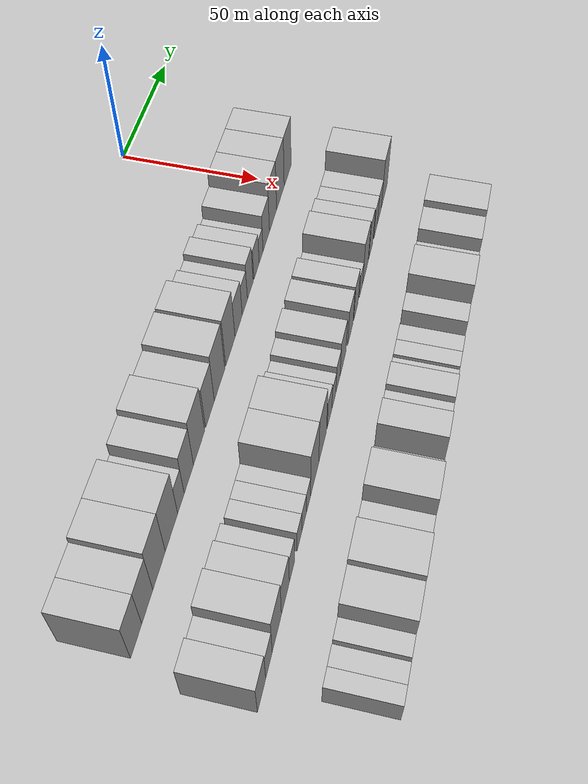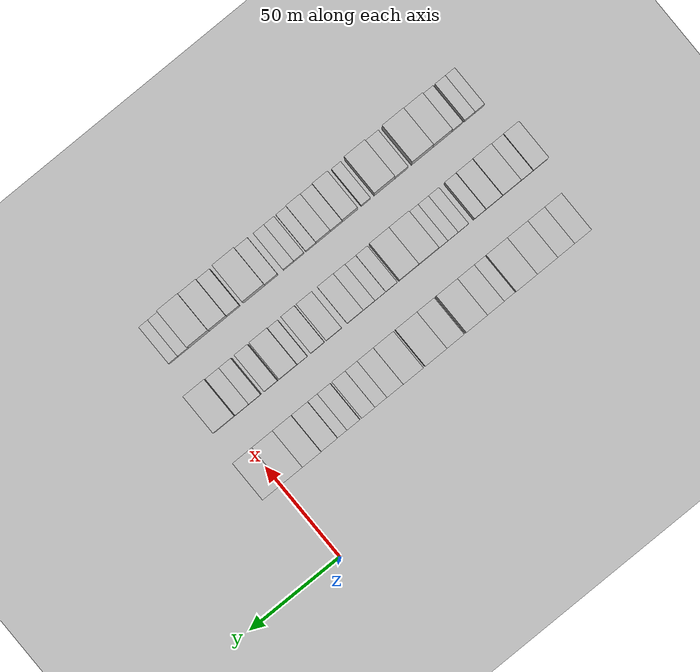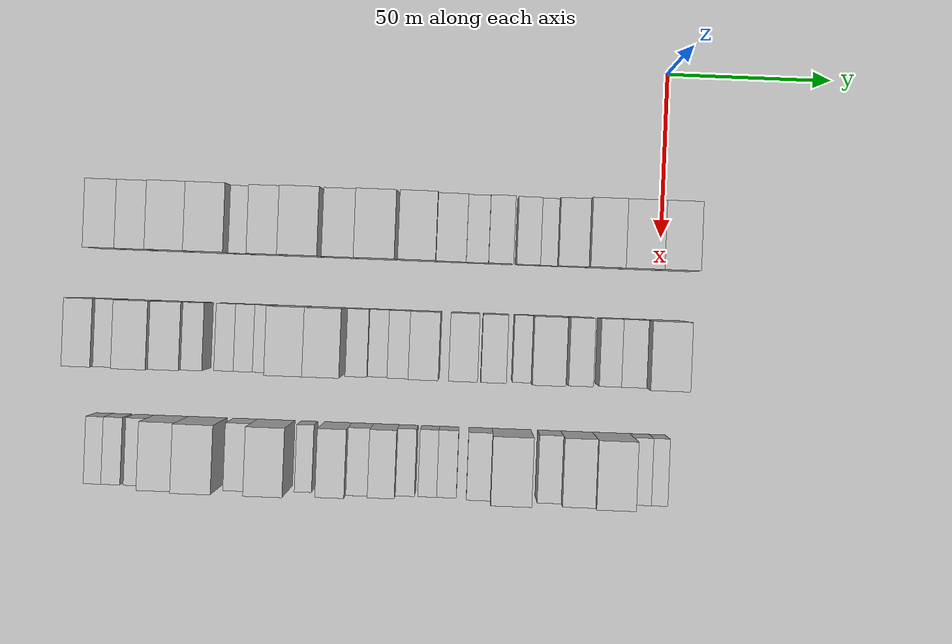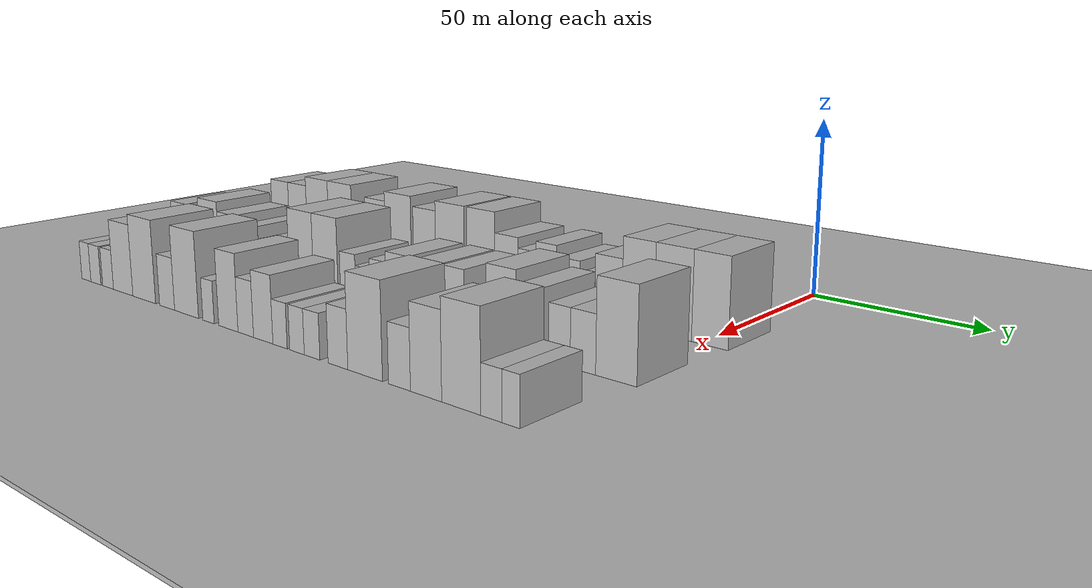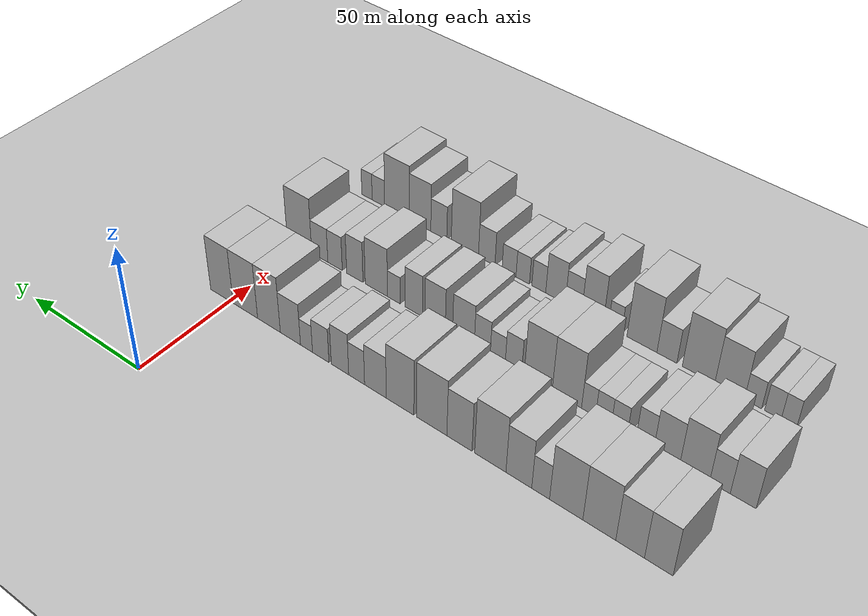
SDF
<sdf version="1.6">
 <world name="default">
  <include><name>ground_plane_1</name><uri>model://HANNAS_ground_plane</uri></include>
  <include>
   <name>ground_plane_2</name>
   <uri>model://HANNAS_ground_plane</uri>
   <pose>100 0 0  0 0 0</pose>
  </include>
  <model name="building_19">
   <static>1</static>
   <pose>50.0000 -166.1909 0 0.000000 0.000000 0.000000</pose>
   <link name="link">
    <pose>0 0 10.50 0 0 0</pose>
    <collision name="collision"><geometry><box><size>20.0000 9.2155 21.0000</size></box></geometry></collision>
    <visual name="visual">
     <cast_shadows>0</cast_shadows>
     <geometry><box><size>20.0000 9.2155 21.0000</size></box></geometry>
     <material>
      <script>
       <uri>model://HANNAS_wall/materials/scripts</uri>
       <uri>model://HANNAS_wall/materials/textures</uri>
       <name>vrc/HANNAS_wall</name>
      </script>
     </material>
    </visual>
   </link>
  </model>
  <model name="building_20">
   <static>1</static>
   <pose>50.0000 -156.8598 0 0.000000 0.000000 0.000000</pose>
   <link name="link">
    <pose>0 0 10.50 0 0 0</pose>
    <collision name="collision"><geometry><box><size>20.0000 9.4467 21.0000</size></box></geometry></collision>
    <visual name="visual">
     <cast_shadows>0</cast_shadows>
     <geometry><box><size>20.0000 9.4467 21.0000</size></box></geometry>
     <material>
      <script>
       <uri>model://HANNAS_wall/materials/scripts</uri>
       <uri>model://HANNAS_wall/materials/textures</uri>
       <name>vrc/HANNAS_wall</name>
      </script>
     </material>
    </visual>
   </link>
  </model>
  <model name="building_21">
   <static>1</static>
   <pose>50.0000 -146.5706 0 0.000000 0.000000 0.000000</pose>
   <link name="link">
    <pose>0 0 12.00 0 0 0</pose>
    <collision name="collision"><geometry><box><size>20.0000 11.1319 24.0000</size></box></geometry></collision>
    <visual name="visual">
     <cast_shadows>0</cast_shadows>
     <geometry><box><size>20.0000 11.1319 24.0000</size></box></geometry>
     <material>
      <script>
       <uri>model://HANNAS_wall/materials/scripts</uri>
       <uri>model://HANNAS_wall/materials/textures</uri>
       <name>vrc/HANNAS_wall</name>
      </script>
     </material>
    </visual>
   </link>
  </model>
  <model name="building_22">
   <static>1</static>
   <pose>50.0000 -135.2333 0 0.000000 0.000000 0.000000</pose>
   <link name="link">
    <pose>0 0 12.00 0 0 0</pose>
    <collision name="collision"><geometry><box><size>20.0000 11.5426 24.0000</size></box></geometry></collision>
    <visual name="visual">
     <cast_shadows>0</cast_shadows>
     <geometry><box><size>20.0000 11.5426 24.0000</size></box></geometry>
     <material>
      <script>
       <uri>model://HANNAS_wall/materials/scripts</uri>
       <uri>model://HANNAS_wall/materials/textures</uri>
       <name>vrc/HANNAS_wall</name>
      </script>
     </material>
    </visual>
   </link>
  </model>
  <model name="building_23">
   <static>1</static>
   <pose>50.0000 -126.3119 0 0.000000 0.000000 0.000000</pose>
   <link name="link">
    <pose>0 0 7.50 0 0 0</pose>
    <collision name="collision"><geometry><box><size>20.0000 6.3001 15.0000</size></box></geometry></collision>
    <visual name="visual">
     <cast_shadows>0</cast_shadows>
     <geometry><box><size>20.0000 6.3001 15.0000</size></box></geometry>
     <material>
      <script>
       <uri>model://HANNAS_wall/materials/scripts</uri>
       <uri>model://HANNAS_wall/materials/textures</uri>
       <name>vrc/HANNAS_wall</name>
      </script>
     </material>
    </visual>
   </link>
  </model>
  <model name="building_24">
   <static>1</static>
   <pose>50.0000 -118.5132 0 0.000000 0.000000 0.000000</pose>
   <link name="link">
    <pose>0 0 10.50 0 0 0</pose>
    <collision name="collision"><geometry><box><size>20.0000 9.2973 21.0000</size></box></geometry></collision>
    <visual name="visual">
     <cast_shadows>0</cast_shadows>
     <geometry><box><size>20.0000 9.2973 21.0000</size></box></geometry>
     <material>
      <script>
       <uri>model://HANNAS_wall/materials/scripts</uri>
       <uri>model://HANNAS_wall/materials/textures</uri>
       <name>vrc/HANNAS_wall</name>
      </script>
     </material>
    </visual>
   </link>
  </model>
  <model name="building_25">
   <static>1</static>
   <pose>50.0000 -108.0796 0 0.000000 0.000000 0.000000</pose>
   <link name="link">
    <pose>0 0 12.00 0 0 0</pose>
    <collision name="collision"><geometry><box><size>20.0000 11.5699 24.0000</size></box></geometry></collision>
    <visual name="visual">
     <cast_shadows>0</cast_shadows>
     <geometry><box><size>20.0000 11.5699 24.0000</size></box></geometry>
     <material>
      <script>
       <uri>model://HANNAS_wall/materials/scripts</uri>
       <uri>model://HANNAS_wall/materials/textures</uri>
       <name>vrc/HANNAS_wall</name>
      </script>
     </material>
    </visual>
   </link>
  </model>
  <model name="building_26">
   <static>1</static>
   <pose>50.0000 -96.5357 0 0.000000 0.000000 0.000000</pose>
   <link name="link">
    <pose>0 0 10.50 0 0 0</pose>
    <collision name="collision"><geometry><box><size>20.0000 9.5178 21.0000</size></box></geometry></collision>
    <visual name="visual">
     <cast_shadows>0</cast_shadows>
     <geometry><box><size>20.0000 9.5178 21.0000</size></box></geometry>
     <material>
      <script>
       <uri>model://HANNAS_wall/materials/scripts</uri>
       <uri>model://HANNAS_wall/materials/textures</uri>
       <name>vrc/HANNAS_wall</name>
      </script>
     </material>
    </visual>
   </link>
  </model>
  <model name="building_27">
   <static>1</static>
   <pose>50.0000 -85.8645 0 0.000000 0.000000 0.000000</pose>
   <link name="link">
    <pose>0 0 12.00 0 0 0</pose>
    <collision name="collision"><geometry><box><size>20.0000 11.8246 24.0000</size></box></geometry></collision>
    <visual name="visual">
     <cast_shadows>0</cast_shadows>
     <geometry><box><size>20.0000 11.8246 24.0000</size></box></geometry>
     <material>
      <script>
       <uri>model://HANNAS_wall/materials/scripts</uri>
       <uri>model://HANNAS_wall/materials/textures</uri>
       <name>vrc/HANNAS_wall</name>
      </script>
     </material>
    </visual>
   </link>
  </model>
  <model name="building_28">
   <static>1</static>
   <pose>50.0000 -73.4634 0 0.000000 0.000000 0.000000</pose>
   <link name="link">
    <pose>0 0 12.00 0 0 0</pose>
    <collision name="collision"><geometry><box><size>20.0000 10.9775 24.0000</size></box></geometry></collision>
    <visual name="visual">
     <cast_shadows>0</cast_shadows>
     <geometry><box><size>20.0000 10.9775 24.0000</size></box></geometry>
     <material>
      <script>
       <uri>model://HANNAS_wall/materials/scripts</uri>
       <uri>model://HANNAS_wall/materials/textures</uri>
       <name>vrc/HANNAS_wall</name>
      </script>
     </material>
    </visual>
   </link>
  </model>
  <model name="building_29">
   <static>1</static>
   <pose>50.0000 -63.5556 0 0.000000 0.000000 0.000000</pose>
   <link name="link">
    <pose>0 0 9.00 0 0 0</pose>
    <collision name="collision"><geometry><box><size>20.0000 8.8380 18.0000</size></box></geometry></collision>
    <visual name="visual">
     <cast_shadows>0</cast_shadows>
     <geometry><box><size>20.0000 8.8380 18.0000</size></box></geometry>
     <material>
      <script>
       <uri>model://HANNAS_wall/materials/scripts</uri>
       <uri>model://HANNAS_wall/materials/textures</uri>
       <name>vrc/HANNAS_wall</name>
      </script>
     </material>
    </visual>
   </link>
  </model>
  <model name="building_30">
   <static>1</static>
   <pose>50.0000 -55.8476 0 0.000000 0.000000 0.000000</pose>
   <link name="link">
    <pose>0 0 7.50 0 0 0</pose>
    <collision name="collision"><geometry><box><size>20.0000 6.5781 15.0000</size></box></geometry></collision>
    <visual name="visual">
     <cast_shadows>0</cast_shadows>
     <geometry><box><size>20.0000 6.5781 15.0000</size></box></geometry>
     <material>
      <script>
       <uri>model://HANNAS_wall/materials/scripts</uri>
       <uri>model://HANNAS_wall/materials/textures</uri>
       <name>vrc/HANNAS_wall</name>
      </script>
     </material>
    </visual>
   </link>
  </model>
  <model name="building_31">
   <static>1</static>
   <pose>50.0000 -48.9078 0 0.000000 0.000000 0.000000</pose>
   <link name="link">
    <pose>0 0 9.00 0 0 0</pose>
    <collision name="collision"><geometry><box><size>20.0000 7.3015 18.0000</size></box></geometry></collision>
    <visual name="visual">
     <cast_shadows>0</cast_shadows>
     <geometry><box><size>20.0000 7.3015 18.0000</size></box></geometry>
     <material>
      <script>
       <uri>model://HANNAS_wall/materials/scripts</uri>
       <uri>model://HANNAS_wall/materials/textures</uri>
       <name>vrc/HANNAS_wall</name>
      </script>
     </material>
    </visual>
   </link>
  </model>
  <model name="building_32">
   <static>1</static>
   <pose>50.0000 -40.7422 0 0.000000 0.000000 0.000000</pose>
   <link name="link">
    <pose>0 0 7.50 0 0 0</pose>
    <collision name="collision"><geometry><box><size>20.0000 7.0297 15.0000</size></box></geometry></collision>
    <visual name="visual">
     <cast_shadows>0</cast_shadows>
     <geometry><box><size>20.0000 7.0297 15.0000</size></box></geometry>
     <material>
      <script>
       <uri>model://HANNAS_wall/materials/scripts</uri>
       <uri>model://HANNAS_wall/materials/textures</uri>
       <name>vrc/HANNAS_wall</name>
      </script>
     </material>
    </visual>
   </link>
  </model>
  <model name="building_33">
   <static>1</static>
   <pose>50.0000 -34.6302 0 0.000000 0.000000 0.000000</pose>
   <link name="link">
    <pose>0 0 6.00 0 0 0</pose>
    <collision name="collision"><geometry><box><size>20.0000 5.1942 12.0000</size></box></geometry></collision>
    <visual name="visual">
     <cast_shadows>0</cast_shadows>
     <geometry><box><size>20.0000 5.1942 12.0000</size></box></geometry>
     <material>
      <script>
       <uri>model://HANNAS_wall/materials/scripts</uri>
       <uri>model://HANNAS_wall/materials/textures</uri>
       <name>vrc/HANNAS_wall</name>
      </script>
     </material>
    </visual>
   </link>
  </model>
  <model name="building_34">
   <static>1</static>
   <pose>50.0000 -27.5937 0 0.000000 0.000000 0.000000</pose>
   <link name="link">
    <pose>0 0 9.00 0 0 0</pose>
    <collision name="collision"><geometry><box><size>20.0000 8.8788 18.0000</size></box></geometry></collision>
    <visual name="visual">
     <cast_shadows>0</cast_shadows>
     <geometry><box><size>20.0000 8.8788 18.0000</size></box></geometry>
     <material>
      <script>
       <uri>model://HANNAS_wall/materials/scripts</uri>
       <uri>model://HANNAS_wall/materials/textures</uri>
       <name>vrc/HANNAS_wall</name>
      </script>
     </material>
    </visual>
   </link>
  </model>
  <model name="building_35">
   <static>1</static>
   <pose>50.0000 -18.0670 0 0.000000 0.000000 0.000000</pose>
   <link name="link">
    <pose>0 0 12.00 0 0 0</pose>
    <collision name="collision"><geometry><box><size>20.0000 10.1747 24.0000</size></box></geometry></collision>
    <visual name="visual">
     <cast_shadows>0</cast_shadows>
     <geometry><box><size>20.0000 10.1747 24.0000</size></box></geometry>
     <material>
      <script>
       <uri>model://HANNAS_wall/materials/scripts</uri>
       <uri>model://HANNAS_wall/materials/textures</uri>
       <name>vrc/HANNAS_wall</name>
      </script>
     </material>
    </visual>
   </link>
  </model>
  <model name="building_36">
   <static>1</static>
   <pose>50.0000 -7.3837 0 0.000000 0.000000 0.000000</pose>
   <link name="link">
    <pose>0 0 12.00 0 0 0</pose>
    <collision name="collision"><geometry><box><size>20.0000 11.1919 24.0000</size></box></geometry></collision>
    <visual name="visual">
     <cast_shadows>0</cast_shadows>
     <geometry><box><size>20.0000 11.1919 24.0000</size></box></geometry>
     <material>
      <script>
       <uri>model://HANNAS_wall/materials/scripts</uri>
       <uri>model://HANNAS_wall/materials/textures</uri>
       <name>vrc/HANNAS_wall</name>
      </script>
     </material>
    </visual>
   </link>
  </model>
  <model name="building_37">
   <static>1</static>
   <pose>50.0000 3.4778 0 0.000000 0.000000 0.000000</pose>
   <link name="link">
    <pose>0 0 12.00 0 0 0</pose>
    <collision name="collision"><geometry><box><size>20.0000 10.5311 24.0000</size></box></geometry></collision>
    <visual name="visual">
     <cast_shadows>0</cast_shadows>
     <geometry><box><size>20.0000 10.5311 24.0000</size></box></geometry>
     <material>
      <script>
       <uri>model://HANNAS_wall/materials/scripts</uri>
       <uri>model://HANNAS_wall/materials/textures</uri>
       <name>vrc/HANNAS_wall</name>
      </script>
     </material>
    </visual>
   </link>
  </model>
  <model name="building_100">
   <static>1</static>
   <pose>85.0000 -172.2699 0 0.000000 0.000000 0.000000</pose>
   <link name="link">
    <pose>0 0 9.00 0 0 0</pose>
    <collision name="collision"><geometry><box><size>20.0000 8.4433 18.0000</size></box></geometry></collision>
    <visual name="visual">
     <cast_shadows>0</cast_shadows>
     <geometry><box><size>20.0000 8.4433 18.0000</size></box></geometry>
     <material>
      <script>
       <uri>model://HANNAS_wall/materials/scripts</uri>
       <uri>model://HANNAS_wall/materials/textures</uri>
       <name>vrc/HANNAS_wall</name>
      </script>
     </material>
    </visual>
   </link>
  </model>
  <model name="building_101">
   <static>1</static>
   <pose>85.0000 -164.6258 0 0.000000 0.000000 0.000000</pose>
   <link name="link">
    <pose>0 0 7.50 0 0 0</pose>
    <collision name="collision"><geometry><box><size>20.0000 6.8450 15.0000</size></box></geometry></collision>
    <visual name="visual">
     <cast_shadows>0</cast_shadows>
     <geometry><box><size>20.0000 6.8450 15.0000</size></box></geometry>
     <material>
      <script>
       <uri>model://HANNAS_wall/materials/scripts</uri>
       <uri>model://HANNAS_wall/materials/textures</uri>
       <name>vrc/HANNAS_wall</name>
      </script>
     </material>
    </visual>
   </link>
  </model>
  <model name="building_102">
   <static>1</static>
   <pose>85.0000 -156.1647 0 0.000000 0.000000 0.000000</pose>
   <link name="link">
    <pose>0 0 10.50 0 0 0</pose>
    <collision name="collision"><geometry><box><size>20.0000 10.0772 21.0000</size></box></geometry></collision>
    <visual name="visual">
     <cast_shadows>0</cast_shadows>
     <geometry><box><size>20.0000 10.0772 21.0000</size></box></geometry>
     <material>
      <script>
       <uri>model://HANNAS_wall/materials/scripts</uri>
       <uri>model://HANNAS_wall/materials/textures</uri>
       <name>vrc/HANNAS_wall</name>
      </script>
     </material>
    </visual>
   </link>
  </model>
  <model name="building_103">
   <static>1</static>
   <pose>85.0000 -146.6313 0 0.000000 0.000000 0.000000</pose>
   <link name="link">
    <pose>0 0 9.00 0 0 0</pose>
    <collision name="collision"><geometry><box><size>20.0000 8.9896 18.0000</size></box></geometry></collision>
    <visual name="visual">
     <cast_shadows>0</cast_shadows>
     <geometry><box><size>20.0000 8.9896 18.0000</size></box></geometry>
     <material>
      <script>
       <uri>model://HANNAS_wall/materials/scripts</uri>
       <uri>model://HANNAS_wall/materials/textures</uri>
       <name>vrc/HANNAS_wall</name>
      </script>
     </material>
    </visual>
   </link>
  </model>
  <model name="building_104">
   <static>1</static>
   <pose>85.0000 -139.0014 0 0.000000 0.000000 0.000000</pose>
   <link name="link">
    <pose>0 0 7.50 0 0 0</pose>
    <collision name="collision"><geometry><box><size>20.0000 6.2702 15.0000</size></box></geometry></collision>
    <visual name="visual">
     <cast_shadows>0</cast_shadows>
     <geometry><box><size>20.0000 6.2702 15.0000</size></box></geometry>
     <material>
      <script>
       <uri>model://HANNAS_wall/materials/scripts</uri>
       <uri>model://HANNAS_wall/materials/textures</uri>
       <name>vrc/HANNAS_wall</name>
      </script>
     </material>
    </visual>
   </link>
  </model>
  <model name="building_105">
   <static>1</static>
   <pose>85.0000 -129.9901 0 0.000000 0.000000 0.000000</pose>
   <link name="link">
    <pose>0 0 6.00 0 0 0</pose>
    <collision name="collision"><geometry><box><size>20.0000 5.7524 12.0000</size></box></geometry></collision>
    <visual name="visual">
     <cast_shadows>0</cast_shadows>
     <geometry><box><size>20.0000 5.7524 12.0000</size></box></geometry>
     <material>
      <script>
       <uri>model://HANNAS_wall/materials/scripts</uri>
       <uri>model://HANNAS_wall/materials/textures</uri>
       <name>vrc/HANNAS_wall</name>
      </script>
     </material>
    </visual>
   </link>
  </model>
  <model name="building_106">
   <static>1</static>
   <pose>85.0000 -124.2565 0 0.000000 0.000000 0.000000</pose>
   <link name="link">
    <pose>0 0 6.00 0 0 0</pose>
    <collision name="collision"><geometry><box><size>20.0000 5.7148 12.0000</size></box></geometry></collision>
    <visual name="visual">
     <cast_shadows>0</cast_shadows>
     <geometry><box><size>20.0000 5.7148 12.0000</size></box></geometry>
     <material>
      <script>
       <uri>model://HANNAS_wall/materials/scripts</uri>
       <uri>model://HANNAS_wall/materials/textures</uri>
       <name>vrc/HANNAS_wall</name>
      </script>
     </material>
    </visual>
   </link>
  </model>
  <model name="building_107">
   <static>1</static>
   <pose>85.0000 -118.8142 0 0.000000 0.000000 0.000000</pose>
   <link name="link">
    <pose>0 0 6.00 0 0 0</pose>
    <collision name="collision"><geometry><box><size>20.0000 5.1698 12.0000</size></box></geometry></collision>
    <visual name="visual">
     <cast_shadows>0</cast_shadows>
     <geometry><box><size>20.0000 5.1698 12.0000</size></box></geometry>
     <material>
      <script>
       <uri>model://HANNAS_wall/materials/scripts</uri>
       <uri>model://HANNAS_wall/materials/textures</uri>
       <name>vrc/HANNAS_wall</name>
      </script>
     </material>
    </visual>
   </link>
  </model>
  <model name="building_108">
   <static>1</static>
   <pose>85.0000 -110.7447 0 0.000000 0.000000 0.000000</pose>
   <link name="link">
    <pose>0 0 12.00 0 0 0</pose>
    <collision name="collision"><geometry><box><size>20.0000 10.9692 24.0000</size></box></geometry></collision>
    <visual name="visual">
     <cast_shadows>0</cast_shadows>
     <geometry><box><size>20.0000 10.9692 24.0000</size></box></geometry>
     <material>
      <script>
       <uri>model://HANNAS_wall/materials/scripts</uri>
       <uri>model://HANNAS_wall/materials/textures</uri>
       <name>vrc/HANNAS_wall</name>
      </script>
     </material>
    </visual>
   </link>
  </model>
  <model name="building_109">
   <static>1</static>
   <pose>85.0000 -99.9073 0 0.000000 0.000000 0.000000</pose>
   <link name="link">
    <pose>0 0 12.00 0 0 0</pose>
    <collision name="collision"><geometry><box><size>20.0000 10.7057 24.0000</size></box></geometry></collision>
    <visual name="visual">
     <cast_shadows>0</cast_shadows>
     <geometry><box><size>20.0000 10.7057 24.0000</size></box></geometry>
     <material>
      <script>
       <uri>model://HANNAS_wall/materials/scripts</uri>
       <uri>model://HANNAS_wall/materials/textures</uri>
       <name>vrc/HANNAS_wall</name>
      </script>
     </material>
    </visual>
   </link>
  </model>
  <model name="building_110">
   <static>1</static>
   <pose>85.0000 -90.3620 0 0.000000 0.000000 0.000000</pose>
   <link name="link">
    <pose>0 0 7.50 0 0 0</pose>
    <collision name="collision"><geometry><box><size>20.0000 6.3848 15.0000</size></box></geometry></collision>
    <visual name="visual">
     <cast_shadows>0</cast_shadows>
     <geometry><box><size>20.0000 6.3848 15.0000</size></box></geometry>
     <material>
      <script>
       <uri>model://HANNAS_wall/materials/scripts</uri>
       <uri>model://HANNAS_wall/materials/textures</uri>
       <name>vrc/HANNAS_wall</name>
      </script>
     </material>
    </visual>
   </link>
  </model>
  <model name="building_111">
   <static>1</static>
   <pose>85.0000 -84.1899 0 0.000000 0.000000 0.000000</pose>
   <link name="link">
    <pose>0 0 6.00 0 0 0</pose>
    <collision name="collision"><geometry><box><size>20.0000 5.9594 12.0000</size></box></geometry></collision>
    <visual name="visual">
     <cast_shadows>0</cast_shadows>
     <geometry><box><size>20.0000 5.9594 12.0000</size></box></geometry>
     <material>
      <script>
       <uri>model://HANNAS_wall/materials/scripts</uri>
       <uri>model://HANNAS_wall/materials/textures</uri>
       <name>vrc/HANNAS_wall</name>
      </script>
     </material>
    </visual>
   </link>
  </model>
  <model name="building_112">
   <static>1</static>
   <pose>85.0000 -78.0218 0 0.000000 0.000000 0.000000</pose>
   <link name="link">
    <pose>0 0 7.50 0 0 0</pose>
    <collision name="collision"><geometry><box><size>20.0000 6.3767 15.0000</size></box></geometry></collision>
    <visual name="visual">
     <cast_shadows>0</cast_shadows>
     <geometry><box><size>20.0000 6.3767 15.0000</size></box></geometry>
     <material>
      <script>
       <uri>model://HANNAS_wall/materials/scripts</uri>
       <uri>model://HANNAS_wall/materials/textures</uri>
       <name>vrc/HANNAS_wall</name>
      </script>
     </material>
    </visual>
   </link>
  </model>
  <model name="building_113">
   <static>1</static>
   <pose>85.0000 -70.4146 0 0.000000 0.000000 0.000000</pose>
   <link name="link">
    <pose>0 0 9.00 0 0 0</pose>
    <collision name="collision"><geometry><box><size>20.0000 8.8378 18.0000</size></box></geometry></collision>
    <visual name="visual">
     <cast_shadows>0</cast_shadows>
     <geometry><box><size>20.0000 8.8378 18.0000</size></box></geometry>
     <material>
      <script>
       <uri>model://HANNAS_wall/materials/scripts</uri>
       <uri>model://HANNAS_wall/materials/textures</uri>
       <name>vrc/HANNAS_wall</name>
      </script>
     </material>
    </visual>
   </link>
  </model>
  <model name="building_114">
   <static>1</static>
   <pose>85.0000 -58.7420 0 0.000000 0.000000 0.000000</pose>
   <link name="link">
    <pose>0 0 9.00 0 0 0</pose>
    <collision name="collision"><geometry><box><size>20.0000 8.5073 18.0000</size></box></geometry></collision>
    <visual name="visual">
     <cast_shadows>0</cast_shadows>
     <geometry><box><size>20.0000 8.5073 18.0000</size></box></geometry>
     <material>
      <script>
       <uri>model://HANNAS_wall/materials/scripts</uri>
       <uri>model://HANNAS_wall/materials/textures</uri>
       <name>vrc/HANNAS_wall</name>
      </script>
     </material>
    </visual>
   </link>
  </model>
  <model name="building_115">
   <static>1</static>
   <pose>85.0000 -49.7682 0 0.000000 0.000000 0.000000</pose>
   <link name="link">
    <pose>0 0 9.00 0 0 0</pose>
    <collision name="collision"><geometry><box><size>20.0000 7.4404 18.0000</size></box></geometry></collision>
    <visual name="visual">
     <cast_shadows>0</cast_shadows>
     <geometry><box><size>20.0000 7.4404 18.0000</size></box></geometry>
     <material>
      <script>
       <uri>model://HANNAS_wall/materials/scripts</uri>
       <uri>model://HANNAS_wall/materials/textures</uri>
       <name>vrc/HANNAS_wall</name>
      </script>
     </material>
    </visual>
   </link>
  </model>
  <model name="building_116">
   <static>1</static>
   <pose>85.0000 -41.2940 0 0.000000 0.000000 0.000000</pose>
   <link name="link">
    <pose>0 0 6.00 0 0 0</pose>
    <collision name="collision"><geometry><box><size>20.0000 5.5079 12.0000</size></box></geometry></collision>
    <visual name="visual">
     <cast_shadows>0</cast_shadows>
     <geometry><box><size>20.0000 5.5079 12.0000</size></box></geometry>
     <material>
      <script>
       <uri>model://HANNAS_wall/materials/scripts</uri>
       <uri>model://HANNAS_wall/materials/textures</uri>
       <name>vrc/HANNAS_wall</name>
      </script>
     </material>
    </visual>
   </link>
  </model>
  <model name="building_117">
   <static>1</static>
   <pose>85.0000 -33.6576 0 0.000000 0.000000 0.000000</pose>
   <link name="link">
    <pose>0 0 10.50 0 0 0</pose>
    <collision name="collision"><geometry><box><size>20.0000 9.7649 21.0000</size></box></geometry></collision>
    <visual name="visual">
     <cast_shadows>0</cast_shadows>
     <geometry><box><size>20.0000 9.7649 21.0000</size></box></geometry>
     <material>
      <script>
       <uri>model://HANNAS_wall/materials/scripts</uri>
       <uri>model://HANNAS_wall/materials/textures</uri>
       <name>vrc/HANNAS_wall</name>
      </script>
     </material>
    </visual>
   </link>
  </model>
  <model name="building_118">
   <static>1</static>
   <pose>85.0000 -24.1400 0 0.000000 0.000000 0.000000</pose>
   <link name="link">
    <pose>0 0 9.00 0 0 0</pose>
    <collision name="collision"><geometry><box><size>20.0000 7.2703 18.0000</size></box></geometry></collision>
    <visual name="visual">
     <cast_shadows>0</cast_shadows>
     <geometry><box><size>20.0000 7.2703 18.0000</size></box></geometry>
     <material>
      <script>
       <uri>model://HANNAS_wall/materials/scripts</uri>
       <uri>model://HANNAS_wall/materials/textures</uri>
       <name>vrc/HANNAS_wall</name>
      </script>
     </material>
    </visual>
   </link>
  </model>
  <model name="building_119">
   <static>1</static>
   <pose>85.0000 -15.2325 0 0.000000 0.000000 0.000000</pose>
   <link name="link">
    <pose>0 0 7.50 0 0 0</pose>
    <collision name="collision"><geometry><box><size>20.0000 6.5447 15.0000</size></box></geometry></collision>
    <visual name="visual">
     <cast_shadows>0</cast_shadows>
     <geometry><box><size>20.0000 6.5447 15.0000</size></box></geometry>
     <material>
      <script>
       <uri>model://HANNAS_wall/materials/scripts</uri>
       <uri>model://HANNAS_wall/materials/textures</uri>
       <name>vrc/HANNAS_wall</name>
      </script>
     </material>
    </visual>
   </link>
  </model>
  <model name="building_120">
   <static>1</static>
   <pose>85.0000 -8.2309 0 0.000000 0.000000 0.000000</pose>
   <link name="link">
    <pose>0 0 7.50 0 0 0</pose>
    <collision name="collision"><geometry><box><size>20.0000 7.4584 15.0000</size></box></geometry></collision>
    <visual name="visual">
     <cast_shadows>0</cast_shadows>
     <geometry><box><size>20.0000 7.4584 15.0000</size></box></geometry>
     <material>
      <script>
       <uri>model://HANNAS_wall/materials/scripts</uri>
       <uri>model://HANNAS_wall/materials/textures</uri>
       <name>vrc/HANNAS_wall</name>
      </script>
     </material>
    </visual>
   </link>
  </model>
  <model name="building_121">
   <static>1</static>
   <pose>85.0000 1.2666 0 0.000000 0.000000 0.000000</pose>
   <link name="link">
    <pose>0 0 12.00 0 0 0</pose>
    <collision name="collision"><geometry><box><size>20.0000 11.5366 24.0000</size></box></geometry></collision>
    <visual name="visual">
     <cast_shadows>0</cast_shadows>
     <geometry><box><size>20.0000 11.5366 24.0000</size></box></geometry>
     <material>
      <script>
       <uri>model://HANNAS_wall/materials/scripts</uri>
       <uri>model://HANNAS_wall/materials/textures</uri>
       <name>vrc/HANNAS_wall</name>
      </script>
     </material>
    </visual>
   </link>
  </model>
  <model name="building_186">
   <static>1</static>
   <pose>120.0000 -167.7123 0 0.000000 0.000000 0.000000</pose>
   <link name="link">
    <pose>0 0 6.00 0 0 0</pose>
    <collision name="collision"><geometry><box><size>20.0000 5.2181 12.0000</size></box></geometry></collision>
    <visual name="visual">
     <cast_shadows>0</cast_shadows>
     <geometry><box><size>20.0000 5.2181 12.0000</size></box></geometry>
     <material>
      <script>
       <uri>model://HANNAS_wall/materials/scripts</uri>
       <uri>model://HANNAS_wall/materials/textures</uri>
       <name>vrc/HANNAS_wall</name>
      </script>
     </material>
    </visual>
   </link>
  </model>
  <model name="building_187">
   <static>1</static>
   <pose>120.0000 -162.2536 0 0.000000 0.000000 0.000000</pose>
   <link name="link">
    <pose>0 0 6.00 0 0 0</pose>
    <collision name="collision"><geometry><box><size>20.0000 5.6994 12.0000</size></box></geometry></collision>
    <visual name="visual">
     <cast_shadows>0</cast_shadows>
     <geometry><box><size>20.0000 5.6994 12.0000</size></box></geometry>
     <material>
      <script>
       <uri>model://HANNAS_wall/materials/scripts</uri>
       <uri>model://HANNAS_wall/materials/textures</uri>
       <name>vrc/HANNAS_wall</name>
      </script>
     </material>
    </visual>
   </link>
  </model>
  <model name="building_188">
   <static>1</static>
   <pose>120.0000 -155.4128 0 0.000000 0.000000 0.000000</pose>
   <link name="link">
    <pose>0 0 6.00 0 0 0</pose>
    <collision name="collision"><geometry><box><size>20.0000 5.9821 12.0000</size></box></geometry></collision>
    <visual name="visual">
     <cast_shadows>0</cast_shadows>
     <geometry><box><size>20.0000 5.9821 12.0000</size></box></geometry>
     <material>
      <script>
       <uri>model://HANNAS_wall/materials/scripts</uri>
       <uri>model://HANNAS_wall/materials/textures</uri>
       <name>vrc/HANNAS_wall</name>
      </script>
     </material>
    </visual>
   </link>
  </model>
  <model name="building_189">
   <static>1</static>
   <pose>120.0000 -147.1974 0 0.000000 0.000000 0.000000</pose>
   <link name="link">
    <pose>0 0 10.50 0 0 0</pose>
    <collision name="collision"><geometry><box><size>20.0000 10.4488 21.0000</size></box></geometry></collision>
    <visual name="visual">
     <cast_shadows>0</cast_shadows>
     <geometry><box><size>20.0000 10.4488 21.0000</size></box></geometry>
     <material>
      <script>
       <uri>model://HANNAS_wall/materials/scripts</uri>
       <uri>model://HANNAS_wall/materials/textures</uri>
       <name>vrc/HANNAS_wall</name>
      </script>
     </material>
    </visual>
   </link>
  </model>
  <model name="building_190">
   <static>1</static>
   <pose>120.0000 -136.1210 0 0.000000 0.000000 0.000000</pose>
   <link name="link">
    <pose>0 0 12.00 0 0 0</pose>
    <collision name="collision"><geometry><box><size>20.0000 11.7040 24.0000</size></box></geometry></collision>
    <visual name="visual">
     <cast_shadows>0</cast_shadows>
     <geometry><box><size>20.0000 11.7040 24.0000</size></box></geometry>
     <material>
      <script>
       <uri>model://HANNAS_wall/materials/scripts</uri>
       <uri>model://HANNAS_wall/materials/textures</uri>
       <name>vrc/HANNAS_wall</name>
      </script>
     </material>
    </visual>
   </link>
  </model>
  <model name="building_191">
   <static>1</static>
   <pose>120.0000 -124.5819 0 0.000000 0.000000 0.000000</pose>
   <link name="link">
    <pose>0 0 7.50 0 0 0</pose>
    <collision name="collision"><geometry><box><size>20.0000 7.3744 15.0000</size></box></geometry></collision>
    <visual name="visual">
     <cast_shadows>0</cast_shadows>
     <geometry><box><size>20.0000 7.3744 15.0000</size></box></geometry>
     <material>
      <script>
       <uri>model://HANNAS_wall/materials/scripts</uri>
       <uri>model://HANNAS_wall/materials/textures</uri>
       <name>vrc/HANNAS_wall</name>
      </script>
     </material>
    </visual>
   </link>
  </model>
  <model name="building_192">
   <static>1</static>
   <pose>120.0000 -115.2310 0 0.000000 0.000000 0.000000</pose>
   <link name="link">
    <pose>0 0 12.00 0 0 0</pose>
    <collision name="collision"><geometry><box><size>20.0000 11.3274 24.0000</size></box></geometry></collision>
    <visual name="visual">
     <cast_shadows>0</cast_shadows>
     <geometry><box><size>20.0000 11.3274 24.0000</size></box></geometry>
     <material>
      <script>
       <uri>model://HANNAS_wall/materials/scripts</uri>
       <uri>model://HANNAS_wall/materials/textures</uri>
       <name>vrc/HANNAS_wall</name>
      </script>
     </material>
    </visual>
   </link>
  </model>
  <model name="building_193">
   <static>1</static>
   <pose>120.0000 -105.0055 0 0.000000 0.000000 0.000000</pose>
   <link name="link">
    <pose>0 0 6.00 0 0 0</pose>
    <collision name="collision"><geometry><box><size>20.0000 5.1235 12.0000</size></box></geometry></collision>
    <visual name="visual">
     <cast_shadows>0</cast_shadows>
     <geometry><box><size>20.0000 5.1235 12.0000</size></box></geometry>
     <material>
      <script>
       <uri>model://HANNAS_wall/materials/scripts</uri>
       <uri>model://HANNAS_wall/materials/textures</uri>
       <name>vrc/HANNAS_wall</name>
      </script>
     </material>
    </visual>
   </link>
  </model>
  <model name="building_194">
   <static>1</static>
   <pose>120.0000 -96.2284 0 0.000000 0.000000 0.000000</pose>
   <link name="link">
    <pose>0 0 10.50 0 0 0</pose>
    <collision name="collision"><geometry><box><size>20.0000 8.4308 21.0000</size></box></geometry></collision>
    <visual name="visual">
     <cast_shadows>0</cast_shadows>
     <geometry><box><size>20.0000 8.4308 21.0000</size></box></geometry>
     <material>
      <script>
       <uri>model://HANNAS_wall/materials/scripts</uri>
       <uri>model://HANNAS_wall/materials/textures</uri>
       <name>vrc/HANNAS_wall</name>
      </script>
     </material>
    </visual>
   </link>
  </model>
  <model name="building_195">
   <static>1</static>
   <pose>120.0000 -88.7289 0 0.000000 0.000000 0.000000</pose>
   <link name="link">
    <pose>0 0 7.50 0 0 0</pose>
    <collision name="collision"><geometry><box><size>20.0000 6.5682 15.0000</size></box></geometry></collision>
    <visual name="visual">
     <cast_shadows>0</cast_shadows>
     <geometry><box><size>20.0000 6.5682 15.0000</size></box></geometry>
     <material>
      <script>
       <uri>model://HANNAS_wall/materials/scripts</uri>
       <uri>model://HANNAS_wall/materials/textures</uri>
       <name>vrc/HANNAS_wall</name>
      </script>
     </material>
    </visual>
   </link>
  </model>
  <model name="building_196">
   <static>1</static>
   <pose>120.0000 -81.4865 0 0.000000 0.000000 0.000000</pose>
   <link name="link">
    <pose>0 0 9.00 0 0 0</pose>
    <collision name="collision"><geometry><box><size>20.0000 7.9166 18.0000</size></box></geometry></collision>
    <visual name="visual">
     <cast_shadows>0</cast_shadows>
     <geometry><box><size>20.0000 7.9166 18.0000</size></box></geometry>
     <material>
      <script>
       <uri>model://HANNAS_wall/materials/scripts</uri>
       <uri>model://HANNAS_wall/materials/textures</uri>
       <name>vrc/HANNAS_wall</name>
      </script>
     </material>
    </visual>
   </link>
  </model>
  <model name="building_197">
   <static>1</static>
   <pose>120.0000 -74.6950 0 0.000000 0.000000 0.000000</pose>
   <link name="link">
    <pose>0 0 6.00 0 0 0</pose>
    <collision name="collision"><geometry><box><size>20.0000 5.6664 12.0000</size></box></geometry></collision>
    <visual name="visual">
     <cast_shadows>0</cast_shadows>
     <geometry><box><size>20.0000 5.6664 12.0000</size></box></geometry>
     <material>
      <script>
       <uri>model://HANNAS_wall/materials/scripts</uri>
       <uri>model://HANNAS_wall/materials/textures</uri>
       <name>vrc/HANNAS_wall</name>
      </script>
     </material>
    </visual>
   </link>
  </model>
  <model name="building_198">
   <static>1</static>
   <pose>120.0000 -68.0679 0 0.000000 0.000000 0.000000</pose>
   <link name="link">
    <pose>0 0 6.00 0 0 0</pose>
    <collision name="collision"><geometry><box><size>20.0000 5.5878 12.0000</size></box></geometry></collision>
    <visual name="visual">
     <cast_shadows>0</cast_shadows>
     <geometry><box><size>20.0000 5.5878 12.0000</size></box></geometry>
     <material>
      <script>
       <uri>model://HANNAS_wall/materials/scripts</uri>
       <uri>model://HANNAS_wall/materials/textures</uri>
       <name>vrc/HANNAS_wall</name>
      </script>
     </material>
    </visual>
   </link>
  </model>
  <model name="building_199">
   <static>1</static>
   <pose>120.0000 -62.3471 0 0.000000 0.000000 0.000000</pose>
   <link name="link">
    <pose>0 0 6.00 0 0 0</pose>
    <collision name="collision"><geometry><box><size>20.0000 5.8538 12.0000</size></box></geometry></collision>
    <visual name="visual">
     <cast_shadows>0</cast_shadows>
     <geometry><box><size>20.0000 5.8538 12.0000</size></box></geometry>
     <material>
      <script>
       <uri>model://HANNAS_wall/materials/scripts</uri>
       <uri>model://HANNAS_wall/materials/textures</uri>
       <name>vrc/HANNAS_wall</name>
      </script>
     </material>
    </visual>
   </link>
  </model>
  <model name="building_200">
   <static>1</static>
   <pose>120.0000 -52.8812 0 0.000000 0.000000 0.000000</pose>
   <link name="link">
    <pose>0 0 7.50 0 0 0</pose>
    <collision name="collision"><geometry><box><size>20.0000 7.0780 15.0000</size></box></geometry></collision>
    <visual name="visual">
     <cast_shadows>0</cast_shadows>
     <geometry><box><size>20.0000 7.0780 15.0000</size></box></geometry>
     <material>
      <script>
       <uri>model://HANNAS_wall/materials/scripts</uri>
       <uri>model://HANNAS_wall/materials/textures</uri>
       <name>vrc/HANNAS_wall</name>
      </script>
     </material>
    </visual>
   </link>
  </model>
  <model name="building_201">
   <static>1</static>
   <pose>120.0000 -43.4167 0 0.000000 0.000000 0.000000</pose>
   <link name="link">
    <pose>0 0 12.00 0 0 0</pose>
    <collision name="collision"><geometry><box><size>20.0000 11.8509 24.0000</size></box></geometry></collision>
    <visual name="visual">
     <cast_shadows>0</cast_shadows>
     <geometry><box><size>20.0000 11.8509 24.0000</size></box></geometry>
     <material>
      <script>
       <uri>model://HANNAS_wall/materials/scripts</uri>
       <uri>model://HANNAS_wall/materials/textures</uri>
       <name>vrc/HANNAS_wall</name>
      </script>
     </material>
    </visual>
   </link>
  </model>
  <model name="building_202">
   <static>1</static>
   <pose>120.0000 -31.9460 0 0.000000 0.000000 0.000000</pose>
   <link name="link">
    <pose>0 0 7.50 0 0 0</pose>
    <collision name="collision"><geometry><box><size>20.0000 7.0906 15.0000</size></box></geometry></collision>
    <visual name="visual">
     <cast_shadows>0</cast_shadows>
     <geometry><box><size>20.0000 7.0906 15.0000</size></box></geometry>
     <material>
      <script>
       <uri>model://HANNAS_wall/materials/scripts</uri>
       <uri>model://HANNAS_wall/materials/textures</uri>
       <name>vrc/HANNAS_wall</name>
      </script>
     </material>
    </visual>
   </link>
  </model>
  <model name="building_203">
   <static>1</static>
   <pose>120.0000 -23.5636 0 0.000000 0.000000 0.000000</pose>
   <link name="link">
    <pose>0 0 10.50 0 0 0</pose>
    <collision name="collision"><geometry><box><size>20.0000 9.6742 21.0000</size></box></geometry></collision>
    <visual name="visual">
     <cast_shadows>0</cast_shadows>
     <geometry><box><size>20.0000 9.6742 21.0000</size></box></geometry>
     <material>
      <script>
       <uri>model://HANNAS_wall/materials/scripts</uri>
       <uri>model://HANNAS_wall/materials/textures</uri>
       <name>vrc/HANNAS_wall</name>
      </script>
     </material>
    </visual>
   </link>
  </model>
  <model name="building_204">
   <static>1</static>
   <pose>120.0000 -13.0023 0 0.000000 0.000000 0.000000</pose>
   <link name="link">
    <pose>0 0 12.00 0 0 0</pose>
    <collision name="collision"><geometry><box><size>20.0000 11.4485 24.0000</size></box></geometry></collision>
    <visual name="visual">
     <cast_shadows>0</cast_shadows>
     <geometry><box><size>20.0000 11.4485 24.0000</size></box></geometry>
     <material>
      <script>
       <uri>model://HANNAS_wall/materials/scripts</uri>
       <uri>model://HANNAS_wall/materials/textures</uri>
       <name>vrc/HANNAS_wall</name>
      </script>
     </material>
    </visual>
   </link>
  </model>
  <model name="building_205">
   <static>1</static>
   <pose>120.0000 -4.3392 0 0.000000 0.000000 0.000000</pose>
   <link name="link">
    <pose>0 0 6.00 0 0 0</pose>
    <collision name="collision"><geometry><box><size>20.0000 5.8778 12.0000</size></box></geometry></collision>
    <visual name="visual">
     <cast_shadows>0</cast_shadows>
     <geometry><box><size>20.0000 5.8778 12.0000</size></box></geometry>
     <material>
      <script>
       <uri>model://HANNAS_wall/materials/scripts</uri>
       <uri>model://HANNAS_wall/materials/textures</uri>
       <name>vrc/HANNAS_wall</name>
      </script>
     </material>
    </visual>
   </link>
  </model>
  <model name="building_206">
   <static>1</static>
   <pose>120.0000 1.0475 0 0.000000 0.000000 0.000000</pose>
   <link name="link">
    <pose>0 0 6.00 0 0 0</pose>
    <collision name="collision"><geometry><box><size>20.0000 4.8955 12.0000</size></box></geometry></collision>
    <visual name="visual">
     <cast_shadows>0</cast_shadows>
     <geometry><box><size>20.0000 4.8955 12.0000</size></box></geometry>
     <material>
      <script>
       <uri>model://HANNAS_wall/materials/scripts</uri>
       <uri>model://HANNAS_wall/materials/textures</uri>
       <name>vrc/HANNAS_wall</name>
      </script>
     </material>
    </visual>
   </link>
  </model>
 </world>
</sdf>
